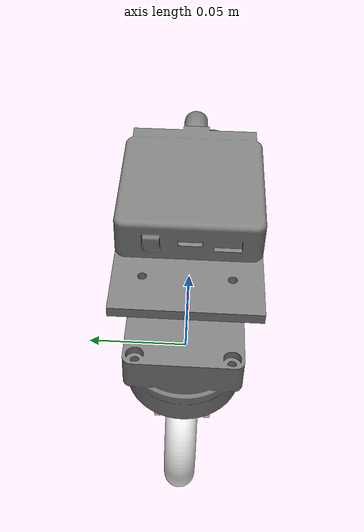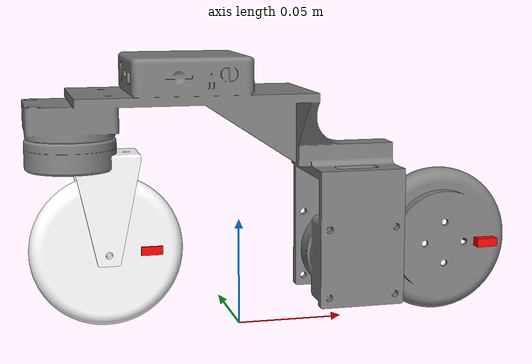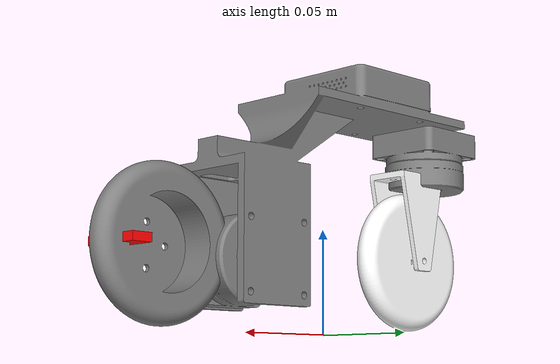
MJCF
<mujoco model="HBP_V2_mjcf">
  <compiler angle="radian" meshdir="assets" autolimits="true" />

  <option timestep="0.001" iterations="30" cone="elliptic" impratio="100" gravity="0 0 -9.81"/>

  <default>
    <!-- textset -->
    <position inheritrange="1" timeconst="0.01"/>
    <!-- text�[text�Fgroup=0 -->
    <default class="collision">
      <geom group="0"/>
    </default>
    <!-- text�Fgroup=1(text) -->
    <default class="visual">
      <geom contype="0" conaffinity="0" group="1"/>
    </default>
  </default>

  <asset>
    <material name="metal" rgba=".9 .95 .95 1" />
    <material name="black" rgba="0 0 0 1" />
    <material name="white" rgba="1 1 1 1" />
    <material name="gray" rgba="0.671705 0.692426 0.774270 1" />

    <mesh name="back_tire" file="back_tire.obj" />
    <mesh name="body" file="body.obj" />
    <mesh name="flont_tire_holder" file="flont_tire_holder.obj" />
    <mesh name="front_tire" file="front_tire.obj" />
  </asset>

  <worldbody>
    <body name="body_obj" pos="0 0 0.111">
      <freejoint />
      <geom type="mesh" mesh="body" group="0" />
      <geom type="mesh" mesh="body" group="0" contype="0" conaffinity="0"/>
      <inertial pos="-0.015137 0 0.12311" mass="0.283" diaginertia="1.576e-4 4.417e-4 4.276e-4" />
      <site name="imu_site" pos="0 0 0.003" size="0.005"/>

      <!-- back_tire -->
      <body name="back_tire" pos="0.098484 0.0 -0.075">
        <joint name="back_tire_pitch" type="hinge" pos="0 0 0" axis="0 1 0" limited="false" damping="0.00001" />
        <inertial pos="-0 -0.001407 -0" mass="0.034" diaginertia="9.523809e-6 1.6211526e-5 9.52381e-6" />
        <geom class="visual" type="mesh" mesh="back_tire"/>
        <geom type="mesh" mesh="back_tire" group="0" friction="0.9 0.05 0.01" />
        <geom class="visual" type="box" size="0.005 0.015 0.002" pos="0.02 -0.002 0" rgba="1 0 0 1"/>
      </body>

      <!-- front_tire_holder -->
      <body name="front_tire_holder" pos="-0.062 0.0 -0.03">
        <joint name="tire_holder_yaw" type="hinge" pos="0 0 0" axis="0 0 1" range="-3.14159 3.14159"
          limited="true"  armature="0.00001" damping="0.00001" />
        <inertial pos="0 0 -0.013803" mass="0.009" diaginertia="2.787516e-6 2.462803e-6 1.235669e-6" />
        <geom class="visual" type="mesh" mesh="flont_tire_holder" rgba="1.0 1.0 1.0 1.0" />
        <geom type="mesh" mesh="flont_tire_holder" group="0" />

        <!-- front_tire -->
        <body name="front_tire" pos="0.0 0.0 -0.042">
          <joint name="front_tire_pitch" type="hinge" pos="0 0 0" axis="0 1 0" limited="false" damping="0.00001" />
          <inertial pos="-0 -0 -0" mass="0.026" diaginertia="7.810778e-6 1.5042828e-5 7.810779e-6" />
          <geom class="visual" type="mesh" mesh="front_tire" rgba="1.0 1.0 1.0 1.0"/>
          <geom type="mesh" mesh="front_tire" group="0" friction="0.9 0.05 0.01" />
          <geom class="visual" type="box" size="0.005 0.005 0.002" pos="0.02 -0.002 0" rgba="1 0 0 1"/>
        </body>
      </body>
    </body>
  </worldbody>

  <actuator>
    <position name="fork_controler" joint="tire_holder_yaw" gear="1"
          kp="100" kv="1" forcerange="-0.021 0.021" forcelimited="true"/>
    <general name="back_tire_motor" joint="back_tire_pitch"
                dyntype="filter" dynprm="0.0055"
                gaintype="fixed" gainprm="2"
                biastype="affine" biasprm="0 0 -0.000333"/>
  </actuator>

  <contact>
    <exclude body1="body_obj" body2="back_tire" />
    <exclude body1="body_obj" body2="front_tire" />
    <exclude body1="body_obj" body2="front_tire_holder" />
    <exclude body1="front_tire_holder" body2="front_tire" />
  </contact>

  <sensor>
    <accelerometer name="body_accel" site="imu_site"/>
    <gyro name="body_gyro" site="imu_site" />
  </sensor>
</mujoco>
